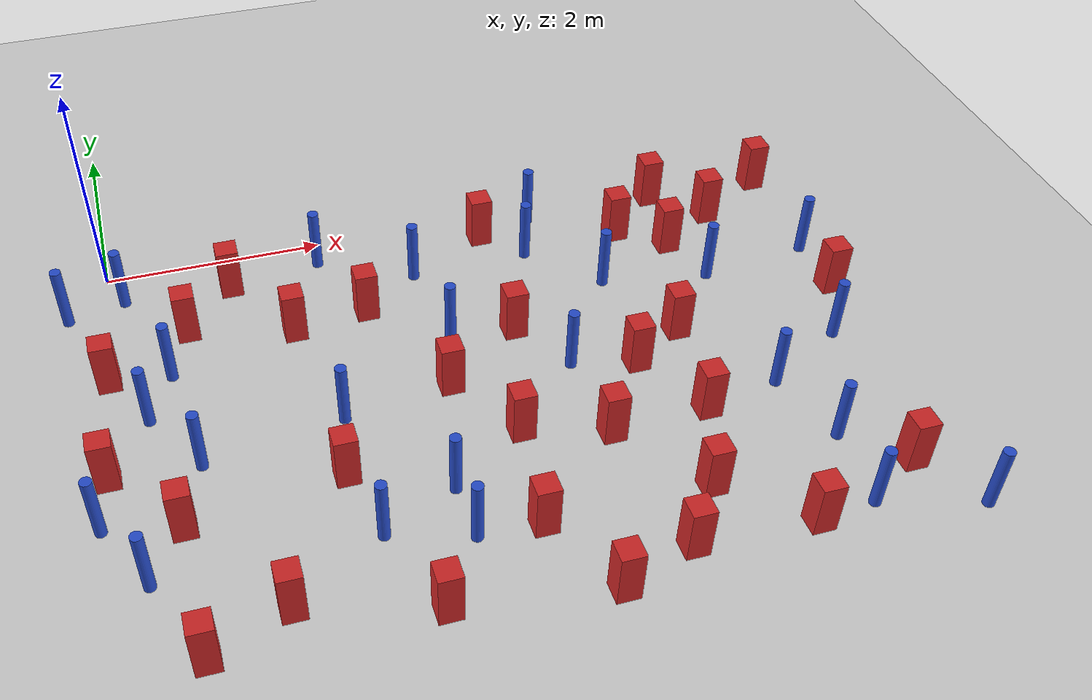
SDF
<sdf version="1.6">
 <world name="default">
  <model name="ground_plane">
   <static>1</static>
   <link name="link">
    <collision name="collision">
     <geometry><plane><normal>0 0 1</normal><size>100 100</size></plane></geometry>
     <surface><friction><ode><mu>100</mu><mu2>50</mu2></ode></friction></surface>
    </collision>
    <visual name="visual">
     <cast_shadows>0</cast_shadows>
     <geometry><plane><normal>0 0 1</normal><size>100 100</size></plane></geometry>
     <material>
      <ambient>1.0 1.0 1.0 1.0</ambient>
      <diffuse>0.8 0.8 0.8 1.0</diffuse>
      <specular>0.01 0.01 0.01 1.000000</specular>
     </material>
    </visual>
   </link>
  </model>
  <model name="NamedLocations">
   <static>true</static>
   <link name="DefaultStart"><pose>8.5 0 0 0 0 3.14</pose></link>
  </model>
  <model name="square_post_obstacle0">
   <static>true</static>
   <pose>1.56605751356 -1.20422821467 1.91545236811e-07 -7.35059704564e-06 1.12565212e-07 2.39332434364e-05</pose>
   <link name="link">
    <pose>0 0 0.25 0 -0 0</pose>
    <inertial>
     <mass>100</mass>
     <inertia>
      <ixx>0.166667</ixx>
      <ixy>0</ixy>
      <ixz>0</ixz>
      <iyy>0.166667</iyy>
      <iyz>0</iyz>
      <izz>0.166667</izz>
     </inertia>
    </inertial>
    <collision name="collision"><geometry><box><size>.2 .2 .5</size></box></geometry></collision>
    <visual name="visual">
     <geometry><box><size>.2 .2 .5</size></box></geometry>
     <material>
      <script><name>Gazebo/Red</name><uri>file://media/materials/scripts/gazebo.material</uri></script>
     </material>
    </visual>
   </link>
  </model>
  <model name="pole_obstacle2">
   <static>true</static>
   <pose>5.5693059751 -4.40679341141 7.38925637345e-09 -8.47170692796e-08 1.24976764786e-08 -1.74513093032e-07</pose>
   <link name="link">
    <pose>0 0 0.3 0 -0 0</pose>
    <inertial>
     <mass>1</mass>
     <inertia><ixx>0.145833</ixx><ixy>0</ixy><ixz>0</ixz><iyy>0.145833</iyy><iyz>0</iyz><izz>0.125</izz></inertia>
    </inertial>
    <collision name="collision">
     <geometry><cylinder><radius>0.05</radius><length>.6</length></cylinder></geometry>
    </collision>
    <visual name="visual">
     <geometry><cylinder><radius>0.05</radius><length>.6</length></cylinder></geometry>
     <material>
      <script><name>Gazebo/Blue</name><uri>file://media/materials/scripts/gazebo.material</uri></script>
     </material>
    </visual>
   </link>
  </model>
  <model name="pole_obstacle4">
   <static>true</static>
   <pose>3.87765196162 -0.706936386413 7.38925637345e-09 -8.471706928e-08 1.24976765177e-08 -1.74513093012e-07</pose>
   <link name="link">
    <pose>0 0 0.3 0 -0 0</pose>
    <inertial>
     <mass>1</mass>
     <inertia><ixx>0.145833</ixx><ixy>0</ixy><ixz>0</ixz><iyy>0.145833</iyy><iyz>0</iyz><izz>0.125</izz></inertia>
    </inertial>
    <collision name="collision">
     <geometry><cylinder><radius>0.05</radius><length>.6</length></cylinder></geometry>
    </collision>
    <visual name="visual">
     <geometry><cylinder><radius>0.05</radius><length>.6</length></cylinder></geometry>
     <material>
      <script><name>Gazebo/Blue</name><uri>file://media/materials/scripts/gazebo.material</uri></script>
     </material>
    </visual>
   </link>
  </model>
  <model name="pole_obstacle5">
   <static>true</static>
   <pose>1.80005106796 -3.65741169704 7.38925637345e-09 -8.47170692799e-08 1.24976765053e-08 -1.74513093017e-07</pose>
   <link name="link">
    <pose>0 0 0.3 0 -0 0</pose>
    <inertial>
     <mass>1</mass>
     <inertia><ixx>0.145833</ixx><ixy>0</ixy><ixz>0</ixz><iyy>0.145833</iyy><iyz>0</iyz><izz>0.125</izz></inertia>
    </inertial>
    <collision name="collision">
     <geometry><cylinder><radius>0.05</radius><length>.6</length></cylinder></geometry>
    </collision>
    <visual name="visual">
     <geometry><cylinder><radius>0.05</radius><length>.6</length></cylinder></geometry>
     <material>
      <script><name>Gazebo/Blue</name><uri>file://media/materials/scripts/gazebo.material</uri></script>
     </material>
    </visual>
   </link>
  </model>
  <model name="pole_obstacle13">
   <static>true</static>
   <pose>0.557342866463 -2.55776858749 7.38925637345e-09 -8.47170692799e-08 1.2497676509e-08 -1.74513093016e-07</pose>
   <link name="link">
    <pose>0 0 0.3 0 -0 0</pose>
    <inertial>
     <mass>1</mass>
     <inertia><ixx>0.145833</ixx><ixy>0</ixy><ixz>0</ixz><iyy>0.145833</iyy><iyz>0</iyz><izz>0.125</izz></inertia>
    </inertial>
    <collision name="collision">
     <geometry><cylinder><radius>0.05</radius><length>.6</length></cylinder></geometry>
    </collision>
    <visual name="visual">
     <geometry><cylinder><radius>0.05</radius><length>.6</length></cylinder></geometry>
     <material>
      <script><name>Gazebo/Blue</name><uri>file://media/materials/scripts/gazebo.material</uri></script>
     </material>
    </visual>
   </link>
  </model>
  <model name="pole_obstacle14">
   <static>true</static>
   <pose>2.77887559729 -0.727295282629 7.38925637345e-09 -8.471706928e-08 1.24976765177e-08 -1.74513093012e-07</pose>
   <link name="link">
    <pose>0 0 0.3 0 -0 0</pose>
    <inertial>
     <mass>1</mass>
     <inertia><ixx>0.145833</ixx><ixy>0</ixy><ixz>0</ixz><iyy>0.145833</iyy><iyz>0</iyz><izz>0.125</izz></inertia>
    </inertial>
    <collision name="collision">
     <geometry><cylinder><radius>0.05</radius><length>.6</length></cylinder></geometry>
    </collision>
    <visual name="visual">
     <geometry><cylinder><radius>0.05</radius><length>.6</length></cylinder></geometry>
     <material>
      <script><name>Gazebo/Blue</name><uri>file://media/materials/scripts/gazebo.material</uri></script>
     </material>
    </visual>
   </link>
  </model>
  <model name="square_post_obstacle12">
   <static>true</static>
   <pose>0.342677569145 -3.17985006614 1.91545236811e-07 -7.35059704564e-06 1.12565212e-07 2.39332434364e-05</pose>
   <link name="link">
    <pose>0 0 0.25 0 -0 0</pose>
    <inertial>
     <mass>100</mass>
     <inertia>
      <ixx>0.166667</ixx>
      <ixy>0</ixy>
      <ixz>0</ixz>
      <iyy>0.166667</iyy>
      <iyz>0</iyz>
      <izz>0.166667</izz>
     </inertia>
    </inertial>
    <collision name="collision"><geometry><box><size>.2 .2 .5</size></box></geometry></collision>
    <visual name="visual">
     <geometry><box><size>.2 .2 .5</size></box></geometry>
     <material>
      <script><name>Gazebo/Red</name><uri>file://media/materials/scripts/gazebo.material</uri></script>
     </material>
    </visual>
   </link>
  </model>
  <model name="pole_obstacle22">
   <static>true</static>
   <pose>5.41686952572 -2.97024607417 7.38925637345e-09 -8.47170692798e-08 1.24976764937e-08 -1.74513093023e-07</pose>
   <link name="link">
    <pose>0 0 0.3 0 -0 0</pose>
    <inertial>
     <mass>1</mass>
     <inertia><ixx>0.145833</ixx><ixy>0</ixy><ixz>0</ixz><iyy>0.145833</iyy><iyz>0</iyz><izz>0.125</izz></inertia>
    </inertial>
    <collision name="collision">
     <geometry><cylinder><radius>0.05</radius><length>.6</length></cylinder></geometry>
    </collision>
    <visual name="visual">
     <geometry><cylinder><radius>0.05</radius><length>.6</length></cylinder></geometry>
     <material>
      <script><name>Gazebo/Blue</name><uri>file://media/materials/scripts/gazebo.material</uri></script>
     </material>
    </visual>
   </link>
  </model>
  <model name="square_post_obstacle26">
   <static>true</static>
   <pose>3.00298609804 -3.90435964276 1.91545236811e-07 -7.35059704564e-06 1.12565212e-07 2.39332434364e-05</pose>
   <link name="link">
    <pose>0 0 0.25 0 -0 0</pose>
    <inertial>
     <mass>100</mass>
     <inertia>
      <ixx>0.166667</ixx>
      <ixy>0</ixy>
      <ixz>0</ixz>
      <iyy>0.166667</iyy>
      <iyz>0</iyz>
      <izz>0.166667</izz>
     </inertia>
    </inertial>
    <collision name="collision"><geometry><box><size>.2 .2 .5</size></box></geometry></collision>
    <visual name="visual">
     <geometry><box><size>.2 .2 .5</size></box></geometry>
     <material>
      <script><name>Gazebo/Red</name><uri>file://media/materials/scripts/gazebo.material</uri></script>
     </material>
    </visual>
   </link>
  </model>
  <model name="square_post_obstacle30">
   <static>true</static>
   <pose>3.13526727466 -2.91828137353 1.91545236811e-07 -7.35059704564e-06 1.12565212e-07 2.39332434364e-05</pose>
   <link name="link">
    <pose>0 0 0.25 0 -0 0</pose>
    <inertial>
     <mass>100</mass>
     <inertia>
      <ixx>0.166667</ixx>
      <ixy>0</ixy>
      <ixz>0</ixz>
      <iyy>0.166667</iyy>
      <iyz>0</iyz>
      <izz>0.166667</izz>
     </inertia>
    </inertial>
    <collision name="collision"><geometry><box><size>.2 .2 .5</size></box></geometry></collision>
    <visual name="visual">
     <geometry><box><size>.2 .2 .5</size></box></geometry>
     <material>
      <script><name>Gazebo/Red</name><uri>file://media/materials/scripts/gazebo.material</uri></script>
     </material>
    </visual>
   </link>
  </model>
  <model name="pole_obstacle47">
   <static>true</static>
   <pose>2.45340736785 -3.35891898372 7.38925637345e-09 -8.47170692798e-08 1.24976764939e-08 -1.74513093025e-07</pose>
   <link name="link">
    <pose>0 0 0.3 0 -0 0</pose>
    <inertial>
     <mass>1</mass>
     <inertia><ixx>0.145833</ixx><ixy>0</ixy><ixz>0</ixz><iyy>0.145833</iyy><iyz>0</iyz><izz>0.125</izz></inertia>
    </inertial>
    <collision name="collision">
     <geometry><cylinder><radius>0.05</radius><length>.6</length></cylinder></geometry>
    </collision>
    <visual name="visual">
     <geometry><cylinder><radius>0.05</radius><length>.6</length></cylinder></geometry>
     <material>
      <script><name>Gazebo/Blue</name><uri>file://media/materials/scripts/gazebo.material</uri></script>
     </material>
    </visual>
   </link>
  </model>
  <model name="square_post_obstacle43">
   <static>true</static>
   <pose>-0.0834088413614 -1.40109835113 1.91545236811e-07 -7.35059704564e-06 1.12565212e-07 2.39332434364e-05</pose>
   <link name="link">
    <pose>0 0 0.25 0 -0 0</pose>
    <inertial>
     <mass>100</mass>
     <inertia>
      <ixx>0.166667</ixx>
      <ixy>0</ixy>
      <ixz>0</ixz>
      <iyy>0.166667</iyy>
      <iyz>0</iyz>
      <izz>0.166667</izz>
     </inertia>
    </inertial>
    <collision name="collision"><geometry><box><size>.2 .2 .5</size></box></geometry></collision>
    <visual name="visual">
     <geometry><box><size>.2 .2 .5</size></box></geometry>
     <material>
      <script><name>Gazebo/Red</name><uri>file://media/materials/scripts/gazebo.material</uri></script>
     </material>
    </visual>
   </link>
  </model>
  <model name="pole_obstacle57">
   <static>true</static>
   <pose>1.94600717163 -0.291093761508 7.38925637345e-09 -8.47170692798e-08 1.24976764989e-08 -1.74513093022e-07</pose>
   <link name="link">
    <pose>0 0 0.3 0 -0 0</pose>
    <inertial>
     <mass>1</mass>
     <inertia><ixx>0.145833</ixx><ixy>0</ixy><ixz>0</ixz><iyy>0.145833</iyy><iyz>0</iyz><izz>0.125</izz></inertia>
    </inertial>
    <collision name="collision">
     <geometry><cylinder><radius>0.05</radius><length>.6</length></cylinder></geometry>
    </collision>
    <visual name="visual">
     <geometry><cylinder><radius>0.05</radius><length>.6</length></cylinder></geometry>
     <material>
      <script><name>Gazebo/Blue</name><uri>file://media/materials/scripts/gazebo.material</uri></script>
     </material>
    </visual>
   </link>
  </model>
  <model name="pole_obstacle62">
   <static>true</static>
   <pose>1.76990866592 -2.36957148785 7.38925637345e-09 -8.47170692799e-08 1.24976765053e-08 -1.74513093017e-07</pose>
   <link name="link">
    <pose>0 0 0.3 0 -0 0</pose>
    <inertial>
     <mass>1</mass>
     <inertia><ixx>0.145833</ixx><ixy>0</ixy><ixz>0</ixz><iyy>0.145833</iyy><iyz>0</iyz><izz>0.125</izz></inertia>
    </inertial>
    <collision name="collision">
     <geometry><cylinder><radius>0.05</radius><length>.6</length></cylinder></geometry>
    </collision>
    <visual name="visual">
     <geometry><cylinder><radius>0.05</radius><length>.6</length></cylinder></geometry>
     <material>
      <script><name>Gazebo/Blue</name><uri>file://media/materials/scripts/gazebo.material</uri></script>
     </material>
    </visual>
   </link>
  </model>
  <model name="pole_obstacle64">
   <static>true</static>
   <pose>2.88937566656 -1.63205517936 7.38925637345e-09 -8.471706928e-08 1.24976765152e-08 -1.74513093012e-07</pose>
   <link name="link">
    <pose>0 0 0.3 0 -0 0</pose>
    <inertial>
     <mass>1</mass>
     <inertia><ixx>0.145833</ixx><ixy>0</ixy><ixz>0</ixz><iyy>0.145833</iyy><iyz>0</iyz><izz>0.125</izz></inertia>
    </inertial>
    <collision name="collision">
     <geometry><cylinder><radius>0.05</radius><length>.6</length></cylinder></geometry>
    </collision>
    <visual name="visual">
     <geometry><cylinder><radius>0.05</radius><length>.6</length></cylinder></geometry>
     <material>
      <script><name>Gazebo/Blue</name><uri>file://media/materials/scripts/gazebo.material</uri></script>
     </material>
    </visual>
   </link>
  </model>
  <model name="pole_obstacle65">
   <static>true</static>
   <pose>-0.377394728652 -0.490783637919 7.38925637345e-09 -8.47170692799e-08 1.24976765028e-08 -1.7451309302e-07</pose>
   <link name="link">
    <pose>0 0 0.3 0 -0 0</pose>
    <inertial>
     <mass>1</mass>
     <inertia><ixx>0.145833</ixx><ixy>0</ixy><ixz>0</ixz><iyy>0.145833</iyy><iyz>0</iyz><izz>0.125</izz></inertia>
    </inertial>
    <collision name="collision">
     <geometry><cylinder><radius>0.05</radius><length>.6</length></cylinder></geometry>
    </collision>
    <visual name="visual">
     <geometry><cylinder><radius>0.05</radius><length>.6</length></cylinder></geometry>
     <material>
      <script><name>Gazebo/Blue</name><uri>file://media/materials/scripts/gazebo.material</uri></script>
     </material>
    </visual>
   </link>
  </model>
  <model name="square_post_obstacle52">
   <static>true</static>
   <pose>0.354737820349 -4.40506372342 1.91545236811e-07 -7.35059704564e-06 1.12565212e-07 2.39332434364e-05</pose>
   <link name="link">
    <pose>0 0 0.25 0 -0 0</pose>
    <inertial>
     <mass>100</mass>
     <inertia>
      <ixx>0.166667</ixx>
      <ixy>0</ixy>
      <ixz>0</ixz>
      <iyy>0.166667</iyy>
      <iyz>0</iyz>
      <izz>0.166667</izz>
     </inertia>
    </inertial>
    <collision name="collision"><geometry><box><size>.2 .2 .5</size></box></geometry></collision>
    <visual name="visual">
     <geometry><box><size>.2 .2 .5</size></box></geometry>
     <material>
      <script><name>Gazebo/Red</name><uri>file://media/materials/scripts/gazebo.material</uri></script>
     </material>
    </visual>
   </link>
  </model>
  <model name="square_post_obstacle74">
   <static>true</static>
   <pose>4.82086356385 -0.648624399507 1.91545236811e-07 -7.35059704564e-06 1.12565212e-07 2.39332434364e-05</pose>
   <link name="link">
    <pose>0 0 0.25 0 -0 0</pose>
    <inertial>
     <mass>100</mass>
     <inertia>
      <ixx>0.166667</ixx>
      <ixy>0</ixy>
      <ixz>0</ixz>
      <iyy>0.166667</iyy>
      <iyz>0</iyz>
      <izz>0.166667</izz>
     </inertia>
    </inertial>
    <collision name="collision"><geometry><box><size>.2 .2 .5</size></box></geometry></collision>
    <visual name="visual">
     <geometry><box><size>.2 .2 .5</size></box></geometry>
     <material>
      <script><name>Gazebo/Red</name><uri>file://media/materials/scripts/gazebo.material</uri></script>
     </material>
    </visual>
   </link>
  </model>
  <model name="pole_obstacle90">
   <static>true</static>
   <pose>2.48086086843 -3.86652673992 7.38925637345e-09 -8.47170692798e-08 1.24976764939e-08 -1.74513093025e-07</pose>
   <link name="link">
    <pose>0 0 0.3 0 -0 0</pose>
    <inertial>
     <mass>1</mass>
     <inertia><ixx>0.145833</ixx><ixy>0</ixy><ixz>0</ixz><iyy>0.145833</iyy><iyz>0</iyz><izz>0.125</izz></inertia>
    </inertial>
    <collision name="collision">
     <geometry><cylinder><radius>0.05</radius><length>.6</length></cylinder></geometry>
    </collision>
    <visual name="visual">
     <geometry><cylinder><radius>0.05</radius><length>.6</length></cylinder></geometry>
     <material>
      <script><name>Gazebo/Blue</name><uri>file://media/materials/scripts/gazebo.material</uri></script>
     </material>
    </visual>
   </link>
  </model>
  <model name="pole_obstacle91">
   <static>true</static>
   <pose>4.45293449601 -1.30264957533 7.38925637345e-09 -8.471706928e-08 1.24976765134e-08 -1.74513093015e-07</pose>
   <link name="link">
    <pose>0 0 0.3 0 -0 0</pose>
    <inertial>
     <mass>1</mass>
     <inertia><ixx>0.145833</ixx><ixy>0</ixy><ixz>0</ixz><iyy>0.145833</iyy><iyz>0</iyz><izz>0.125</izz></inertia>
    </inertial>
    <collision name="collision">
     <geometry><cylinder><radius>0.05</radius><length>.6</length></cylinder></geometry>
    </collision>
    <visual name="visual">
     <geometry><cylinder><radius>0.05</radius><length>.6</length></cylinder></geometry>
     <material>
      <script><name>Gazebo/Blue</name><uri>file://media/materials/scripts/gazebo.material</uri></script>
     </material>
    </visual>
   </link>
  </model>
  <model name="square_post_obstacle87">
   <static>true</static>
   <pose>4.84510086539 -2.12609679039 1.91545236811e-07 -7.35059704564e-06 1.12565212e-07 2.39332434364e-05</pose>
   <link name="link">
    <pose>0 0 0.25 0 -0 0</pose>
    <inertial>
     <mass>100</mass>
     <inertia>
      <ixx>0.166667</ixx>
      <ixy>0</ixy>
      <ixz>0</ixz>
      <iyy>0.166667</iyy>
      <iyz>0</iyz>
      <izz>0.166667</izz>
     </inertia>
    </inertial>
    <collision name="collision"><geometry><box><size>.2 .2 .5</size></box></geometry></collision>
    <visual name="visual">
     <geometry><box><size>.2 .2 .5</size></box></geometry>
     <material>
      <script><name>Gazebo/Red</name><uri>file://media/materials/scripts/gazebo.material</uri></script>
     </material>
    </visual>
   </link>
  </model>
  <model name="square_post_obstacle94">
   <static>true</static>
   <pose>2.72178388772 -2.23603873982 1.91545236811e-07 -7.35059704564e-06 1.12565212e-07 2.39332434364e-05</pose>
   <link name="link">
    <pose>0 0 0.25 0 -0 0</pose>
    <inertial>
     <mass>100</mass>
     <inertia>
      <ixx>0.166667</ixx>
      <ixy>0</ixy>
      <ixz>0</ixz>
      <iyy>0.166667</iyy>
      <iyz>0</iyz>
      <izz>0.166667</izz>
     </inertia>
    </inertial>
    <collision name="collision"><geometry><box><size>.2 .2 .5</size></box></geometry></collision>
    <visual name="visual">
     <geometry><box><size>.2 .2 .5</size></box></geometry>
     <material>
      <script><name>Gazebo/Red</name><uri>file://media/materials/scripts/gazebo.material</uri></script>
     </material>
    </visual>
   </link>
  </model>
  <model name="square_post_obstacle97">
   <static>true</static>
   <pose>4.71272334829 -3.11097765199 1.91545236811e-07 -7.35059704564e-06 1.12565212e-07 2.39332434364e-05</pose>
   <link name="link">
    <pose>0 0 0.25 0 -0 0</pose>
    <inertial>
     <mass>100</mass>
     <inertia>
      <ixx>0.166667</ixx>
      <ixy>0</ixy>
      <ixz>0</ixz>
      <iyy>0.166667</iyy>
      <iyz>0</iyz>
      <izz>0.166667</izz>
     </inertia>
    </inertial>
    <collision name="collision"><geometry><box><size>.2 .2 .5</size></box></geometry></collision>
    <visual name="visual">
     <geometry><box><size>.2 .2 .5</size></box></geometry>
     <material>
      <script><name>Gazebo/Red</name><uri>file://media/materials/scripts/gazebo.material</uri></script>
     </material>
    </visual>
   </link>
  </model>
  <model name="pole_obstacle102">
   <static>true</static>
   <pose>0.136498360251 -0.362591946324 7.38925637345e-09 -8.47170692799e-08 1.24976764981e-08 -1.74513093021e-07</pose>
   <link name="link">
    <pose>0 0 0.3 0 -0 0</pose>
    <inertial>
     <mass>1</mass>
     <inertia><ixx>0.145833</ixx><ixy>0</ixy><ixz>0</ixz><iyy>0.145833</iyy><iyz>0</iyz><izz>0.125</izz></inertia>
    </inertial>
    <collision name="collision">
     <geometry><cylinder><radius>0.05</radius><length>.6</length></cylinder></geometry>
    </collision>
    <visual name="visual">
     <geometry><cylinder><radius>0.05</radius><length>.6</length></cylinder></geometry>
     <material>
      <script><name>Gazebo/Blue</name><uri>file://media/materials/scripts/gazebo.material</uri></script>
     </material>
    </visual>
   </link>
  </model>
  <model name="square_post_obstacle102">
   <static>true</static>
   <pose>4.3520857731 -2.41901332991 1.91545236811e-07 -7.35059704564e-06 1.12565212e-07 2.39332434364e-05</pose>
   <link name="link">
    <pose>0 0 0.25 0 -0 0</pose>
    <inertial>
     <mass>100</mass>
     <inertia>
      <ixx>0.166667</ixx>
      <ixy>0</ixy>
      <ixz>0</ixz>
      <iyy>0.166667</iyy>
      <iyz>0</iyz>
      <izz>0.166667</izz>
     </inertia>
    </inertial>
    <collision name="collision"><geometry><box><size>.2 .2 .5</size></box></geometry></collision>
    <visual name="visual">
     <geometry><box><size>.2 .2 .5</size></box></geometry>
     <material>
      <script><name>Gazebo/Red</name><uri>file://media/materials/scripts/gazebo.material</uri></script>
     </material>
    </visual>
   </link>
  </model>
  <model name="pole_obstacle108">
   <static>true</static>
   <pose>6.45805664238 -1.36048299394 7.38925637345e-09 -8.471706928e-08 1.24976765134e-08 -1.74513093015e-07</pose>
   <link name="link">
    <pose>0 0 0.3 0 -0 0</pose>
    <inertial>
     <mass>1</mass>
     <inertia><ixx>0.145833</ixx><ixy>0</ixy><ixz>0</ixz><iyy>0.145833</iyy><iyz>0</iyz><izz>0.125</izz></inertia>
    </inertial>
    <collision name="collision">
     <geometry><cylinder><radius>0.05</radius><length>.6</length></cylinder></geometry>
    </collision>
    <visual name="visual">
     <geometry><cylinder><radius>0.05</radius><length>.6</length></cylinder></geometry>
     <material>
      <script><name>Gazebo/Blue</name><uri>file://media/materials/scripts/gazebo.material</uri></script>
     </material>
    </visual>
   </link>
  </model>
  <model name="square_post_obstacle103">
   <static>true</static>
   <pose>2.24120867763 -1.10874590142 1.91545236811e-07 -7.35059704564e-06 1.12565212e-07 2.39332434364e-05</pose>
   <link name="link">
    <pose>0 0 0.25 0 -0 0</pose>
    <inertial>
     <mass>100</mass>
     <inertia>
      <ixx>0.166667</ixx>
      <ixy>0</ixy>
      <ixz>0</ixz>
      <iyy>0.166667</iyy>
      <iyz>0</iyz>
      <izz>0.166667</izz>
     </inertia>
    </inertial>
    <collision name="collision"><geometry><box><size>.2 .2 .5</size></box></geometry></collision>
    <visual name="visual">
     <geometry><box><size>.2 .2 .5</size></box></geometry>
     <material>
      <script><name>Gazebo/Red</name><uri>file://media/materials/scripts/gazebo.material</uri></script>
     </material>
    </visual>
   </link>
  </model>
  <model name="square_post_obstacle104">
   <static>true</static>
   <pose>3.53037236977 -0.343867124099 1.91545236811e-07 -7.35059704564e-06 1.12565212e-07 2.39332434364e-05</pose>
   <link name="link">
    <pose>0 0 0.25 0 -0 0</pose>
    <inertial>
     <mass>100</mass>
     <inertia>
      <ixx>0.166667</ixx>
      <ixy>0</ixy>
      <ixz>0</ixz>
      <iyy>0.166667</iyy>
      <iyz>0</iyz>
      <izz>0.166667</izz>
     </inertia>
    </inertial>
    <collision name="collision"><geometry><box><size>.2 .2 .5</size></box></geometry></collision>
    <visual name="visual">
     <geometry><box><size>.2 .2 .5</size></box></geometry>
     <material>
      <script><name>Gazebo/Red</name><uri>file://media/materials/scripts/gazebo.material</uri></script>
     </material>
    </visual>
   </link>
  </model>
  <model name="square_post_obstacle105">
   <static>true</static>
   <pose>1.00795548463 -4.14534480002 1.91545236811e-07 -7.35059704564e-06 1.12565212e-07 2.39332434364e-05</pose>
   <link name="link">
    <pose>0 0 0.25 0 -0 0</pose>
    <inertial>
     <mass>100</mass>
     <inertia>
      <ixx>0.166667</ixx>
      <ixy>0</ixy>
      <ixz>0</ixz>
      <iyy>0.166667</iyy>
      <iyz>0</iyz>
      <izz>0.166667</izz>
     </inertia>
    </inertial>
    <collision name="collision"><geometry><box><size>.2 .2 .5</size></box></geometry></collision>
    <visual name="visual">
     <geometry><box><size>.2 .2 .5</size></box></geometry>
     <material>
      <script><name>Gazebo/Red</name><uri>file://media/materials/scripts/gazebo.material</uri></script>
     </material>
    </visual>
   </link>
  </model>
  <model name="square_post_obstacle114">
   <static>true</static>
   <pose>2.0864557551 -4.45977559731 1.91545236811e-07 -7.35059704564e-06 1.12565212e-07 2.39332434364e-05</pose>
   <link name="link">
    <pose>0 0 0.25 0 -0 0</pose>
    <inertial>
     <mass>100</mass>
     <inertia>
      <ixx>0.166667</ixx>
      <ixy>0</ixy>
      <ixz>0</ixz>
      <iyy>0.166667</iyy>
      <iyz>0</iyz>
      <izz>0.166667</izz>
     </inertia>
    </inertial>
    <collision name="collision"><geometry><box><size>.2 .2 .5</size></box></geometry></collision>
    <visual name="visual">
     <geometry><box><size>.2 .2 .5</size></box></geometry>
     <material>
      <script><name>Gazebo/Red</name><uri>file://media/materials/scripts/gazebo.material</uri></script>
     </material>
    </visual>
   </link>
  </model>
  <model name="square_post_obstacle115">
   <static>true</static>
   <pose>3.84787254571 -3.14655600087 1.91545236811e-07 -7.35059704564e-06 1.12565212e-07 2.39332434364e-05</pose>
   <link name="link">
    <pose>0 0 0.25 0 -0 0</pose>
    <inertial>
     <mass>100</mass>
     <inertia>
      <ixx>0.166667</ixx>
      <ixy>0</ixy>
      <ixz>0</ixz>
      <iyy>0.166667</iyy>
      <iyz>0</iyz>
      <izz>0.166667</izz>
     </inertia>
    </inertial>
    <collision name="collision"><geometry><box><size>.2 .2 .5</size></box></geometry></collision>
    <visual name="visual">
     <geometry><box><size>.2 .2 .5</size></box></geometry>
     <material>
      <script><name>Gazebo/Red</name><uri>file://media/materials/scripts/gazebo.material</uri></script>
     </material>
    </visual>
   </link>
  </model>
  <model name="square_post_obstacle120">
   <static>true</static>
   <pose>5.77942741619 -0.624229935115 1.91545236811e-07 -7.35059704564e-06 1.12565212e-07 2.39332434364e-05</pose>
   <link name="link">
    <pose>0 0 0.25 0 -0 0</pose>
    <inertial>
     <mass>100</mass>
     <inertia>
      <ixx>0.166667</ixx>
      <ixy>0</ixy>
      <ixz>0</ixz>
      <iyy>0.166667</iyy>
      <iyz>0</iyz>
      <izz>0.166667</izz>
     </inertia>
    </inertial>
    <collision name="collision"><geometry><box><size>.2 .2 .5</size></box></geometry></collision>
    <visual name="visual">
     <geometry><box><size>.2 .2 .5</size></box></geometry>
     <material>
      <script><name>Gazebo/Red</name><uri>file://media/materials/scripts/gazebo.material</uri></script>
     </material>
    </visual>
   </link>
  </model>
  <model name="pole_obstacle123">
   <static>true</static>
   <pose>3.79976673872 -2.26965349444 7.38925637345e-09 -8.47170692798e-08 1.24976764939e-08 -1.74513093025e-07</pose>
   <link name="link">
    <pose>0 0 0.3 0 -0 0</pose>
    <inertial>
     <mass>1</mass>
     <inertia><ixx>0.145833</ixx><ixy>0</ixy><ixz>0</ixz><iyy>0.145833</iyy><iyz>0</iyz><izz>0.125</izz></inertia>
    </inertial>
    <collision name="collision">
     <geometry><cylinder><radius>0.05</radius><length>.6</length></cylinder></geometry>
    </collision>
    <visual name="visual">
     <geometry><cylinder><radius>0.05</radius><length>.6</length></cylinder></geometry>
     <material>
      <script><name>Gazebo/Blue</name><uri>file://media/materials/scripts/gazebo.material</uri></script>
     </material>
    </visual>
   </link>
  </model>
  <model name="square_post_obstacle125">
   <static>true</static>
   <pose>6.4564451114 -0.241779276434 1.91545236811e-07 -7.35059704564e-06 1.12565212e-07 2.39332434364e-05</pose>
   <link name="link">
    <pose>0 0 0.25 0 -0 0</pose>
    <inertial>
     <mass>100</mass>
     <inertia>
      <ixx>0.166667</ixx>
      <ixy>0</ixy>
      <ixz>0</ixz>
      <iyy>0.166667</iyy>
      <iyz>0</iyz>
      <izz>0.166667</izz>
     </inertia>
    </inertial>
    <collision name="collision"><geometry><box><size>.2 .2 .5</size></box></geometry></collision>
    <visual name="visual">
     <geometry><box><size>.2 .2 .5</size></box></geometry>
     <material>
      <script><name>Gazebo/Red</name><uri>file://media/materials/scripts/gazebo.material</uri></script>
     </material>
    </visual>
   </link>
  </model>
  <model name="square_post_obstacle128">
   <static>true</static>
   <pose>1.65365242469 -2.99448041922 1.91545236811e-07 -7.35059704564e-06 1.12565212e-07 2.39332434364e-05</pose>
   <link name="link">
    <pose>0 0 0.25 0 -0 0</pose>
    <inertial>
     <mass>100</mass>
     <inertia>
      <ixx>0.166667</ixx>
      <ixy>0</ixy>
      <ixz>0</ixz>
      <iyy>0.166667</iyy>
      <iyz>0</iyz>
      <izz>0.166667</izz>
     </inertia>
    </inertial>
    <collision name="collision"><geometry><box><size>.2 .2 .5</size></box></geometry></collision>
    <visual name="visual">
     <geometry><box><size>.2 .2 .5</size></box></geometry>
     <material>
      <script><name>Gazebo/Red</name><uri>file://media/materials/scripts/gazebo.material</uri></script>
     </material>
    </visual>
   </link>
  </model>
  <model name="square_post_obstacle132">
   <static>true</static>
   <pose>4.02426703436 -4.4208707428 1.91545236811e-07 -7.35059704564e-06 1.12565212e-07 2.39332434364e-05</pose>
   <link name="link">
    <pose>0 0 0.25 0 -0 0</pose>
    <inertial>
     <mass>100</mass>
     <inertia>
      <ixx>0.166667</ixx>
      <ixy>0</ixy>
      <ixz>0</ixz>
      <iyy>0.166667</iyy>
      <iyz>0</iyz>
      <izz>0.166667</izz>
     </inertia>
    </inertial>
    <collision name="collision"><geometry><box><size>.2 .2 .5</size></box></geometry></collision>
    <visual name="visual">
     <geometry><box><size>.2 .2 .5</size></box></geometry>
     <material>
      <script><name>Gazebo/Red</name><uri>file://media/materials/scripts/gazebo.material</uri></script>
     </material>
    </visual>
   </link>
  </model>
  <model name="pole_obstacle136">
   <static>true</static>
   <pose>4.06237920323 -0.214498292958 7.38925637345e-09 -8.471706928e-08 1.24976765089e-08 -1.74513093017e-07</pose>
   <link name="link">
    <pose>0 0 0.3 0 -0 0</pose>
    <inertial>
     <mass>1</mass>
     <inertia><ixx>0.145833</ixx><ixy>0</ixy><ixz>0</ixz><iyy>0.145833</iyy><iyz>0</iyz><izz>0.125</izz></inertia>
    </inertial>
    <collision name="collision">
     <geometry><cylinder><radius>0.05</radius><length>.6</length></cylinder></geometry>
    </collision>
    <visual name="visual">
     <geometry><cylinder><radius>0.05</radius><length>.6</length></cylinder></geometry>
     <material>
      <script><name>Gazebo/Blue</name><uri>file://media/materials/scripts/gazebo.material</uri></script>
     </material>
    </visual>
   </link>
  </model>
  <model name="pole_obstacle137">
   <static>true</static>
   <pose>5.6284973033 -3.67878608347 7.38925637345e-09 -8.47170692798e-08 1.24976764937e-08 -1.74513093023e-07</pose>
   <link name="link">
    <pose>0 0 0.3 0 -0 0</pose>
    <inertial>
     <mass>1</mass>
     <inertia><ixx>0.145833</ixx><ixy>0</ixy><ixz>0</ixz><iyy>0.145833</iyy><iyz>0</iyz><izz>0.125</izz></inertia>
    </inertial>
    <collision name="collision">
     <geometry><cylinder><radius>0.05</radius><length>.6</length></cylinder></geometry>
    </collision>
    <visual name="visual">
     <geometry><cylinder><radius>0.05</radius><length>.6</length></cylinder></geometry>
     <material>
      <script><name>Gazebo/Blue</name><uri>file://media/materials/scripts/gazebo.material</uri></script>
     </material>
    </visual>
   </link>
  </model>
  <model name="pole_obstacle144">
   <static>true</static>
   <pose>-0.278573533643 -3.02141912128 7.38925637345e-09 -8.471706928e-08 1.24976765139e-08 -1.74513093014e-07</pose>
   <link name="link">
    <pose>0 0 0.3 0 -0 0</pose>
    <inertial>
     <mass>1</mass>
     <inertia><ixx>0.145833</ixx><ixy>0</ixy><ixz>0</ixz><iyy>0.145833</iyy><iyz>0</iyz><izz>0.125</izz></inertia>
    </inertial>
    <collision name="collision">
     <geometry><cylinder><radius>0.05</radius><length>.6</length></cylinder></geometry>
    </collision>
    <visual name="visual">
     <geometry><cylinder><radius>0.05</radius><length>.6</length></cylinder></geometry>
     <material>
      <script><name>Gazebo/Blue</name><uri>file://media/materials/scripts/gazebo.material</uri></script>
     </material>
    </visual>
   </link>
  </model>
  <model name="square_post_obstacle145">
   <static>true</static>
   <pose>1.10652170008 -0.440370324306 1.91545236811e-07 -7.35059704564e-06 1.12565212e-07 2.39332434364e-05</pose>
   <link name="link">
    <pose>0 0 0.25 0 -0 0</pose>
    <inertial>
     <mass>100</mass>
     <inertia>
      <ixx>0.166667</ixx>
      <ixy>0</ixy>
      <ixz>0</ixz>
      <iyy>0.166667</iyy>
      <iyz>0</iyz>
      <izz>0.166667</izz>
     </inertia>
    </inertial>
    <collision name="collision"><geometry><box><size>.2 .2 .5</size></box></geometry></collision>
    <visual name="visual">
     <geometry><box><size>.2 .2 .5</size></box></geometry>
     <material>
      <script><name>Gazebo/Red</name><uri>file://media/materials/scripts/gazebo.material</uri></script>
     </material>
    </visual>
   </link>
  </model>
  <model name="square_post_obstacle146">
   <static>true</static>
   <pose>5.05030395034 -4.46795227399 1.91545236811e-07 -7.35059704564e-06 1.12565212e-07 2.39332434364e-05</pose>
   <link name="link">
    <pose>0 0 0.25 0 -0 0</pose>
    <inertial>
     <mass>100</mass>
     <inertia>
      <ixx>0.166667</ixx>
      <ixy>0</ixy>
      <ixz>0</ixz>
      <iyy>0.166667</iyy>
      <iyz>0</iyz>
      <izz>0.166667</izz>
     </inertia>
    </inertial>
    <collision name="collision"><geometry><box><size>.2 .2 .5</size></box></geometry></collision>
    <visual name="visual">
     <geometry><box><size>.2 .2 .5</size></box></geometry>
     <material>
      <script><name>Gazebo/Red</name><uri>file://media/materials/scripts/gazebo.material</uri></script>
     </material>
    </visual>
   </link>
  </model>
  <model name="square_post_obstacle152">
   <static>true</static>
   <pose>5.33647236741 -0.200746390709 1.91545236811e-07 -7.35059704564e-06 1.12565212e-07 2.39332434364e-05</pose>
   <link name="link">
    <pose>0 0 0.25 0 -0 0</pose>
    <inertial>
     <mass>100</mass>
     <inertia>
      <ixx>0.166667</ixx>
      <ixy>0</ixy>
      <ixz>0</ixz>
      <iyy>0.166667</iyy>
      <iyz>0</iyz>
      <izz>0.166667</izz>
     </inertia>
    </inertial>
    <collision name="collision"><geometry><box><size>.2 .2 .5</size></box></geometry></collision>
    <visual name="visual">
     <geometry><box><size>.2 .2 .5</size></box></geometry>
     <material>
      <script><name>Gazebo/Red</name><uri>file://media/materials/scripts/gazebo.material</uri></script>
     </material>
    </visual>
   </link>
  </model>
  <model name="square_post_obstacle153">
   <static>true</static>
   <pose>5.23159076357 -0.957997536874 1.91545236811e-07 -7.35059704564e-06 1.12565212e-07 2.39332434364e-05</pose>
   <link name="link">
    <pose>0 0 0.25 0 -0 0</pose>
    <inertial>
     <mass>100</mass>
     <inertia>
      <ixx>0.166667</ixx>
      <ixy>0</ixy>
      <ixz>0</ixz>
      <iyy>0.166667</iyy>
      <iyz>0</iyz>
      <izz>0.166667</izz>
     </inertia>
    </inertial>
    <collision name="collision"><geometry><box><size>.2 .2 .5</size></box></geometry></collision>
    <visual name="visual">
     <geometry><box><size>.2 .2 .5</size></box></geometry>
     <material>
      <script><name>Gazebo/Red</name><uri>file://media/materials/scripts/gazebo.material</uri></script>
     </material>
    </visual>
   </link>
  </model>
  <model name="pole_obstacle159">
   <static>true</static>
   <pose>0.442890695282 -1.45950016363 7.38925637345e-09 -8.47170692798e-08 1.24976765025e-08 -1.74513093018e-07</pose>
   <link name="link">
    <pose>0 0 0.3 0 -0 0</pose>
    <inertial>
     <mass>1</mass>
     <inertia><ixx>0.145833</ixx><ixy>0</ixy><ixz>0</ixz><iyy>0.145833</iyy><iyz>0</iyz><izz>0.125</izz></inertia>
    </inertial>
    <collision name="collision">
     <geometry><cylinder><radius>0.05</radius><length>.6</length></cylinder></geometry>
    </collision>
    <visual name="visual">
     <geometry><cylinder><radius>0.05</radius><length>.6</length></cylinder></geometry>
     <material>
      <script><name>Gazebo/Blue</name><uri>file://media/materials/scripts/gazebo.material</uri></script>
     </material>
    </visual>
   </link>
  </model>
  <model name="pole_obstacle164">
   <static>true</static>
   <pose>6.42087392475 -4.66194891586 7.38925637345e-09 -8.47170692796e-08 1.24976764786e-08 -1.74513093032e-07</pose>
   <link name="link">
    <pose>0 0 0.3 0 -0 0</pose>
    <inertial>
     <mass>1</mass>
     <inertia><ixx>0.145833</ixx><ixy>0</ixy><ixz>0</ixz><iyy>0.145833</iyy><iyz>0</iyz><izz>0.125</izz></inertia>
    </inertial>
    <collision name="collision">
     <geometry><cylinder><radius>0.05</radius><length>.6</length></cylinder></geometry>
    </collision>
    <visual name="visual">
     <geometry><cylinder><radius>0.05</radius><length>.6</length></cylinder></geometry>
     <material>
      <script><name>Gazebo/Blue</name><uri>file://media/materials/scripts/gazebo.material</uri></script>
     </material>
    </visual>
   </link>
  </model>
  <model name="square_post_obstacle166">
   <static>true</static>
   <pose>0.647654409453 -0.945806761585 1.91545236811e-07 -7.35059704564e-06 1.12565212e-07 2.39332434364e-05</pose>
   <link name="link">
    <pose>0 0 0.25 0 -0 0</pose>
    <inertial>
     <mass>100</mass>
     <inertia>
      <ixx>0.166667</ixx>
      <ixy>0</ixy>
      <ixz>0</ixz>
      <iyy>0.166667</iyy>
      <iyz>0</iyz>
      <izz>0.166667</izz>
     </inertia>
    </inertial>
    <collision name="collision"><geometry><box><size>.2 .2 .5</size></box></geometry></collision>
    <visual name="visual">
     <geometry><box><size>.2 .2 .5</size></box></geometry>
     <material>
      <script><name>Gazebo/Red</name><uri>file://media/materials/scripts/gazebo.material</uri></script>
     </material>
    </visual>
   </link>
  </model>
  <model name="pole_obstacle172">
   <static>true</static>
   <pose>0.199574274905 -1.94272371837 7.38925637345e-09 -8.471706928e-08 1.24976765082e-08 -1.74513093016e-07</pose>
   <link name="link">
    <pose>0 0 0.3 0 -0 0</pose>
    <inertial>
     <mass>1</mass>
     <inertia><ixx>0.145833</ixx><ixy>0</ixy><ixz>0</ixz><iyy>0.145833</iyy><iyz>0</iyz><izz>0.125</izz></inertia>
    </inertial>
    <collision name="collision">
     <geometry><cylinder><radius>0.05</radius><length>.6</length></cylinder></geometry>
    </collision>
    <visual name="visual">
     <geometry><cylinder><radius>0.05</radius><length>.6</length></cylinder></geometry>
     <material>
      <script><name>Gazebo/Blue</name><uri>file://media/materials/scripts/gazebo.material</uri></script>
     </material>
    </visual>
   </link>
  </model>
  <model name="square_post_obstacle181">
   <static>true</static>
   <pose>4.40596271197 -3.90310515017 1.91545236811e-07 -7.35059704564e-06 1.12565212e-07 2.39332434364e-05</pose>
   <link name="link">
    <pose>0 0 0.25 0 -0 0</pose>
    <inertial>
     <mass>100</mass>
     <inertia>
      <ixx>0.166667</ixx>
      <ixy>0</ixy>
      <ixz>0</ixz>
      <iyy>0.166667</iyy>
      <iyz>0</iyz>
      <izz>0.166667</izz>
     </inertia>
    </inertial>
    <collision name="collision"><geometry><box><size>.2 .2 .5</size></box></geometry></collision>
    <visual name="visual">
     <geometry><box><size>.2 .2 .5</size></box></geometry>
     <material>
      <script><name>Gazebo/Red</name><uri>file://media/materials/scripts/gazebo.material</uri></script>
     </material>
    </visual>
   </link>
  </model>
  <model name="square_post_obstacle183">
   <static>true</static>
   <pose>6.06688957128 -4.09850834131 1.91545236811e-07 -7.35059704564e-06 1.12565212e-07 2.39332434364e-05</pose>
   <link name="link">
    <pose>0 0 0.25 0 -0 0</pose>
    <inertial>
     <mass>100</mass>
     <inertia>
      <ixx>0.166667</ixx>
      <ixy>0</ixy>
      <ixz>0</ixz>
      <iyy>0.166667</iyy>
      <iyz>0</iyz>
      <izz>0.166667</izz>
     </inertia>
    </inertial>
    <collision name="collision"><geometry><box><size>.2 .2 .5</size></box></geometry></collision>
    <visual name="visual">
     <geometry><box><size>.2 .2 .5</size></box></geometry>
     <material>
      <script><name>Gazebo/Red</name><uri>file://media/materials/scripts/gazebo.material</uri></script>
     </material>
    </visual>
   </link>
  </model>
  <model name="square_post_obstacle186">
   <static>true</static>
   <pose>3.37850080374 -4.6451664982 1.91545236811e-07 -7.35059704564e-06 1.12565212e-07 2.39332434364e-05</pose>
   <link name="link">
    <pose>0 0 0.25 0 -0 0</pose>
    <inertial>
     <mass>100</mass>
     <inertia>
      <ixx>0.166667</ixx>
      <ixy>0</ixy>
      <ixz>0</ixz>
      <iyy>0.166667</iyy>
      <iyz>0</iyz>
      <izz>0.166667</izz>
     </inertia>
    </inertial>
    <collision name="collision"><geometry><box><size>.2 .2 .5</size></box></geometry></collision>
    <visual name="visual">
     <geometry><box><size>.2 .2 .5</size></box></geometry>
     <material>
      <script><name>Gazebo/Red</name><uri>file://media/materials/scripts/gazebo.material</uri></script>
     </material>
    </visual>
   </link>
  </model>
  <model name="square_post_obstacle194">
   <static>true</static>
   <pose>6.46530125231 -1.93704901757 1.91545236811e-07 -7.35059704564e-06 1.12565212e-07 2.39332434364e-05</pose>
   <link name="link">
    <pose>0 0 0.25 0 -0 0</pose>
    <inertial>
     <mass>100</mass>
     <inertia>
      <ixx>0.166667</ixx>
      <ixy>0</ixy>
      <ixz>0</ixz>
      <iyy>0.166667</iyy>
      <iyz>0</iyz>
      <izz>0.166667</izz>
     </inertia>
    </inertial>
    <collision name="collision"><geometry><box><size>.2 .2 .5</size></box></geometry></collision>
    <visual name="visual">
     <geometry><box><size>.2 .2 .5</size></box></geometry>
     <material>
      <script><name>Gazebo/Red</name><uri>file://media/materials/scripts/gazebo.material</uri></script>
     </material>
    </visual>
   </link>
  </model>
  <model name="square_post_obstacle200">
   <static>true</static>
   <pose>3.45196885092 -1.71512591643 1.91545236811e-07 -7.35059704564e-06 1.12565212e-07 2.39332434364e-05</pose>
   <link name="link">
    <pose>0 0 0.25 0 -0 0</pose>
    <inertial>
     <mass>100</mass>
     <inertia>
      <ixx>0.166667</ixx>
      <ixy>0</ixy>
      <ixz>0</ixz>
      <iyy>0.166667</iyy>
      <iyz>0</iyz>
      <izz>0.166667</izz>
     </inertia>
    </inertial>
    <collision name="collision"><geometry><box><size>.2 .2 .5</size></box></geometry></collision>
    <visual name="visual">
     <geometry><box><size>.2 .2 .5</size></box></geometry>
     <material>
      <script><name>Gazebo/Red</name><uri>file://media/materials/scripts/gazebo.material</uri></script>
     </material>
    </visual>
   </link>
  </model>
  <model name="square_post_obstacle206">
   <static>true</static>
   <pose>-0.18047092106 -2.5204712171 1.91545236811e-07 -7.35059704564e-06 1.12565212e-07 2.39332434364e-05</pose>
   <link name="link">
    <pose>0 0 0.25 0 -0 0</pose>
    <inertial>
     <mass>100</mass>
     <inertia>
      <ixx>0.166667</ixx>
      <ixy>0</ixy>
      <ixz>0</ixz>
      <iyy>0.166667</iyy>
      <iyz>0</iyz>
      <izz>0.166667</izz>
     </inertia>
    </inertial>
    <collision name="collision"><geometry><box><size>.2 .2 .5</size></box></geometry></collision>
    <visual name="visual">
     <geometry><box><size>.2 .2 .5</size></box></geometry>
     <material>
      <script><name>Gazebo/Red</name><uri>file://media/materials/scripts/gazebo.material</uri></script>
     </material>
    </visual>
   </link>
  </model>
  <model name="pole_obstacle201">
   <static>true</static>
   <pose>5.42822380553 -1.48177416308 7.38925637345e-09 -8.471706928e-08 1.24976765134e-08 -1.74513093015e-07</pose>
   <link name="link">
    <pose>0 0 0.3 0 -0 0</pose>
    <inertial>
     <mass>1</mass>
     <inertia><ixx>0.145833</ixx><ixy>0</ixy><ixz>0</ixz><iyy>0.145833</iyy><iyz>0</iyz><izz>0.125</izz></inertia>
    </inertial>
    <collision name="collision">
     <geometry><cylinder><radius>0.05</radius><length>.6</length></cylinder></geometry>
    </collision>
    <visual name="visual">
     <geometry><cylinder><radius>0.05</radius><length>.6</length></cylinder></geometry>
     <material>
      <script><name>Gazebo/Blue</name><uri>file://media/materials/scripts/gazebo.material</uri></script>
     </material>
    </visual>
   </link>
  </model>
  <model name="pole_obstacle206">
   <static>true</static>
   <pose>6.18229000957 -2.54818997922 7.38925637345e-09 -8.47170692798e-08 1.24976764937e-08 -1.74513093023e-07</pose>
   <link name="link">
    <pose>0 0 0.3 0 -0 0</pose>
    <inertial>
     <mass>1</mass>
     <inertia><ixx>0.145833</ixx><ixy>0</ixy><ixz>0</ixz><iyy>0.145833</iyy><iyz>0</iyz><izz>0.125</izz></inertia>
    </inertial>
    <collision name="collision">
     <geometry><cylinder><radius>0.05</radius><length>.6</length></cylinder></geometry>
    </collision>
    <visual name="visual">
     <geometry><cylinder><radius>0.05</radius><length>.6</length></cylinder></geometry>
     <material>
      <script><name>Gazebo/Blue</name><uri>file://media/materials/scripts/gazebo.material</uri></script>
     </material>
    </visual>
   </link>
  </model>
  <model name="pole_obstacle216">
   <static>true</static>
   <pose>0.0312190095747 -3.63841997922 7.38925637345e-09 -8.471706928e-08 1.24976765108e-08 -1.74513093013e-07</pose>
   <link name="link">
    <pose>0 0 0.3 0 -0 0</pose>
    <inertial>
     <mass>1</mass>
     <inertia><ixx>0.145833</ixx><ixy>0</ixy><ixz>0</ixz><iyy>0.145833</iyy><iyz>0</iyz><izz>0.125</izz></inertia>
    </inertial>
    <collision name="collision">
     <geometry><cylinder><radius>0.05</radius><length>.6</length></cylinder></geometry>
    </collision>
    <visual name="visual">
     <geometry><cylinder><radius>0.05</radius><length>.6</length></cylinder></geometry>
     <material>
      <script><name>Gazebo/Blue</name><uri>file://media/materials/scripts/gazebo.material</uri></script>
     </material>
    </visual>
   </link>
  </model>
 </world>
</sdf>
